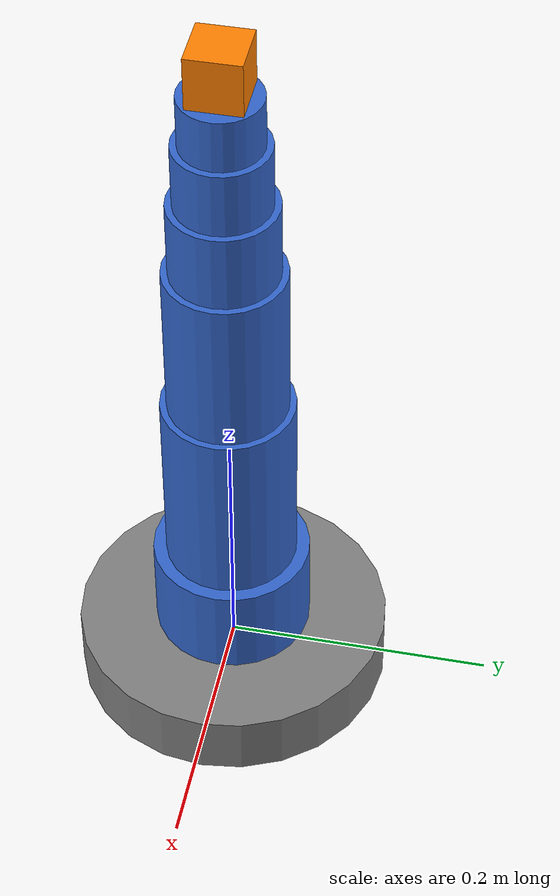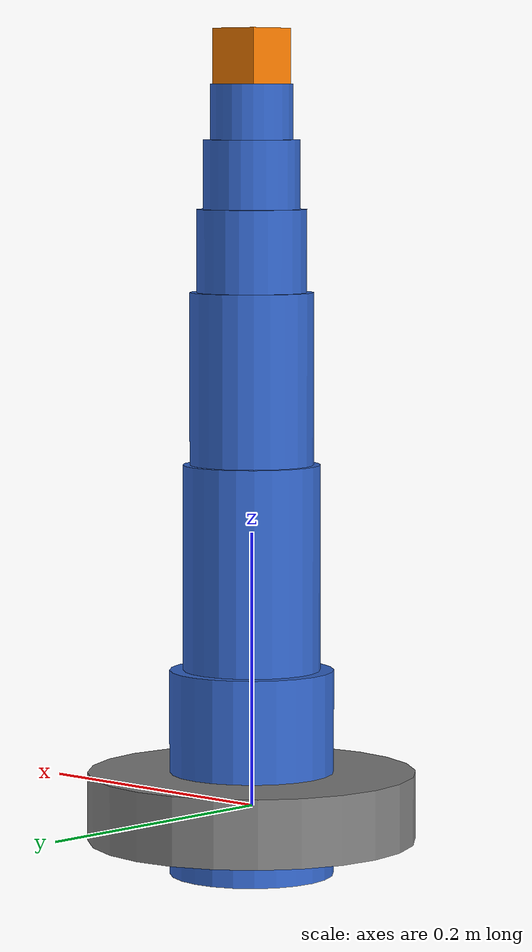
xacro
<?xml version="1.0"?>
<robot xmlns:xacro="http://www.ros.org/wiki/xacro" name="industrial_arm">

  <xacro:property name="pi" value="3.14159265359"/>

  <link name="base_link">
    <visual>
      <geometry><cylinder length="0.05" radius="0.12"/></geometry>
      <material name="gray"><color rgba="0.5 0.5 0.5 1"/></material>
    </visual>
    <collision>
      <geometry><cylinder length="0.05" radius="0.12"/></geometry>
    </collision>
    <inertial>
      <mass value="5.0"/>
      <inertia ixx="0.05" ixy="0" ixz="0" iyy="0.05" iyz="0" izz="0.05"/>
    </inertial>
  </link>

  <!-- 6-DOF chain: adjust link lengths to match your arm -->
  <xacro:macro name="arm_joint" params="name parent child xyz rpy limit_lower limit_upper">
    <joint name="${name}" type="revolute">
      <parent link="${parent}"/>
      <child link="${child}"/>
      <origin xyz="${xyz}" rpy="${rpy}"/>
      <axis xyz="0 0 1"/>
      <limit lower="${limit_lower}" upper="${limit_upper}" effort="150" velocity="2.0"/>
    </joint>
  </xacro:macro>

  <xacro:macro name="arm_link" params="name length radius">
    <link name="${name}">
      <visual>
        <geometry><cylinder length="${length}" radius="${radius}"/></geometry>
        <material name="blue"><color rgba="0.2 0.4 0.8 1"/></material>
      </visual>
      <collision>
        <geometry><cylinder length="${length}" radius="${radius}"/></geometry>
      </collision>
      <inertial>
        <mass value="2.0"/>
        <inertia ixx="0.02" ixy="0" ixz="0" iyy="0.02" iyz="0" izz="0.02"/>
      </inertial>
    </link>
  </xacro:macro>

  <xacro:arm_link name="link_1" length="0.15" radius="0.06"/>
  <xacro:arm_link name="link_2" length="0.30" radius="0.05"/>
  <xacro:arm_link name="link_3" length="0.25" radius="0.045"/>
  <xacro:arm_link name="link_4" length="0.12" radius="0.04"/>
  <xacro:arm_link name="link_5" length="0.10" radius="0.035"/>
  <xacro:arm_link name="link_6" length="0.08" radius="0.03"/>

  <xacro:arm_joint name="joint_1" parent="base_link" child="link_1" xyz="0 0 0.025" rpy="0 0 0" limit_lower="-3.14" limit_upper="3.14"/>
  <xacro:arm_joint name="joint_2" parent="link_1" child="link_2" xyz="0 0 0.075" rpy="0 0 0" limit_lower="-2.0" limit_upper="2.0"/>
  <xacro:arm_joint name="joint_3" parent="link_2" child="link_3" xyz="0 0 0.15" rpy="0 0 0" limit_lower="-2.5" limit_upper="2.5"/>
  <xacro:arm_joint name="joint_4" parent="link_3" child="link_4" xyz="0 0 0.125" rpy="0 0 0" limit_lower="-3.14" limit_upper="3.14"/>
  <xacro:arm_joint name="joint_5" parent="link_4" child="link_5" xyz="0 0 0.06" rpy="0 0 0" limit_lower="-2.0" limit_upper="2.0"/>
  <xacro:arm_joint name="joint_6" parent="link_5" child="link_6" xyz="0 0 0.05" rpy="0 0 0" limit_lower="-3.14" limit_upper="3.14"/>

  <link name="tool0">
    <visual>
      <geometry><box size="0.04 0.04 0.08"/></geometry>
      <material name="orange"><color rgba="1.0 0.5 0.0 1"/></material>
    </visual>
  </link>
  <joint name="ee_fixed" type="fixed">
    <parent link="link_6"/>
    <child link="tool0"/>
    <origin xyz="0 0 0.04" rpy="0 0 0"/>
  </joint>

  <!-- RealSense D455 mount (optional) -->
  <link name="camera_link"/>
  <joint name="camera_mount" type="fixed">
    <parent link="link_6"/>
    <child link="camera_link"/>
    <origin xyz="0.05 0 0.05" rpy="0 0.785 0"/>
  </joint>

</robot>
